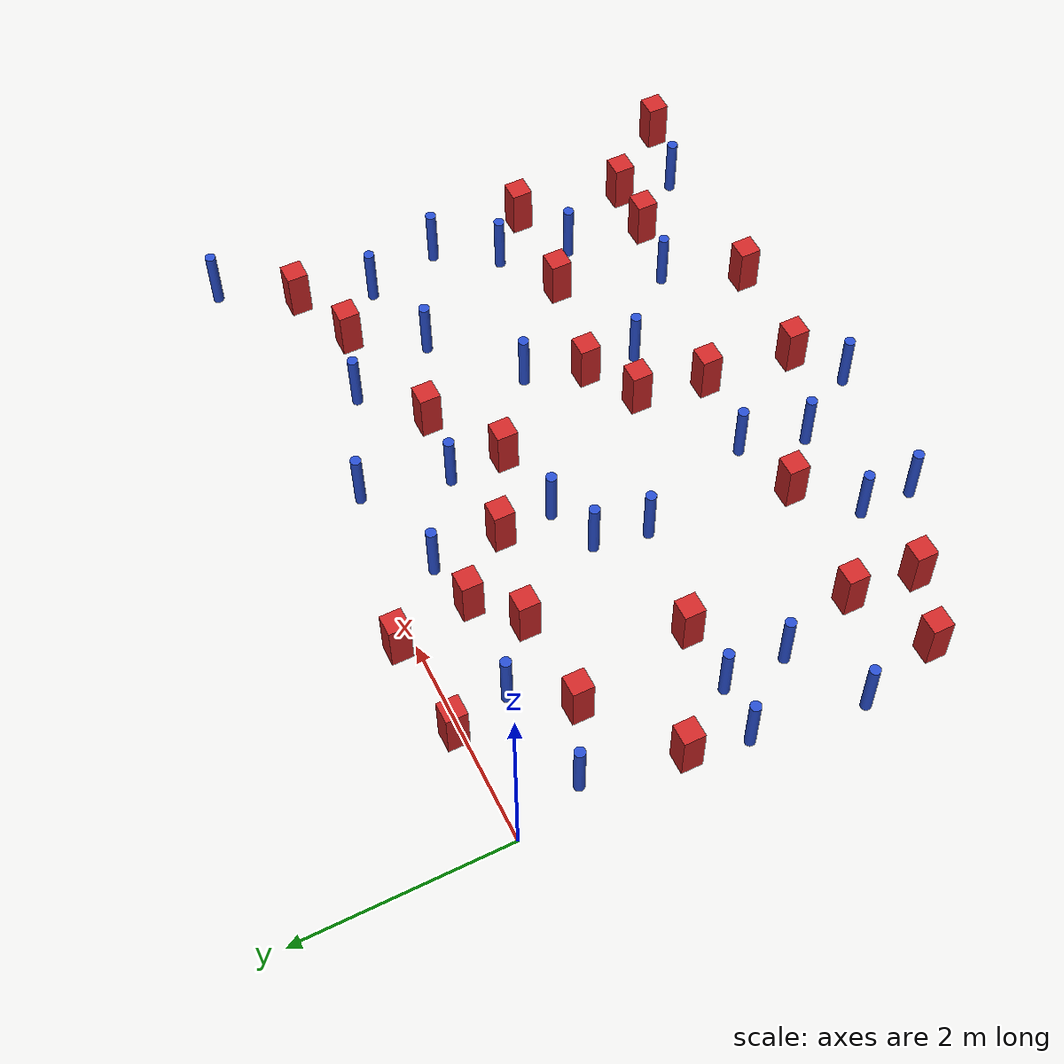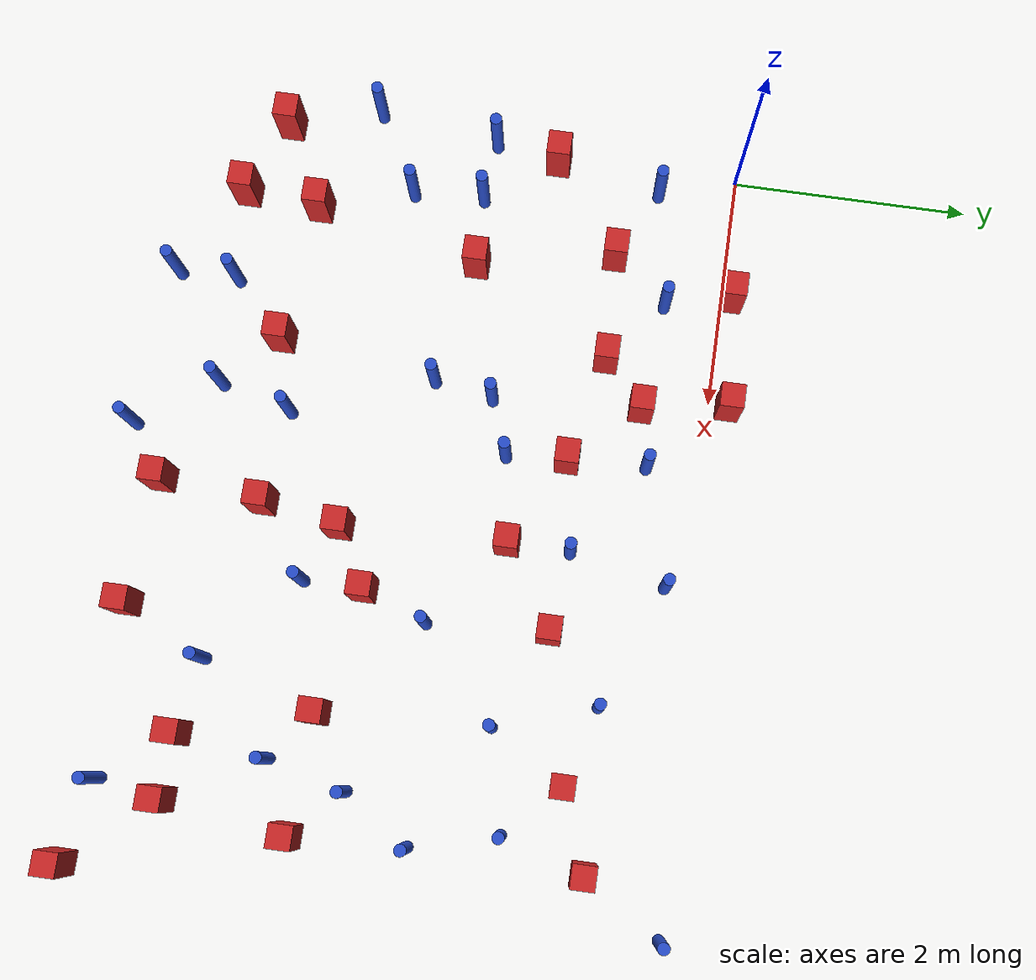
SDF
<sdf version="1.6">
 <model name="dense_96">
  <model name="square_post_obstacle2">
   <static>true</static>
   <pose>0.737378162376 -3.52441754749 -4.36207812815e-07 3.75137919937e-06 9.77721102514e-07 2.47381364184e-05</pose>
   <link name="link">
    <pose>0 0 0.25 0 -0 0</pose>
    <inertial>
     <mass>100</mass>
     <inertia>
      <ixx>0.166667</ixx>
      <ixy>0</ixy>
      <ixz>0</ixz>
      <iyy>0.166667</iyy>
      <iyz>0</iyz>
      <izz>0.166667</izz>
     </inertia>
    </inertial>
    <collision name="collision"><geometry><box><size>.2 .2 .5</size></box></geometry></collision>
    <visual name="visual">
     <geometry><box><size>.2 .2 .5</size></box></geometry>
     <material>
      <script><name>Gazebo/Red</name><uri>file://media/materials/scripts/gazebo.material</uri></script>
     </material>
    </visual>
   </link>
  </model>
  <model name="pole_obstacle13">
   <static>true</static>
   <pose>3.61538598424 -0.178297688606 -3.09024884793e-07 -7.19054271913e-07 -2.11315075118e-07 -1.93935509258e-07</pose>
   <link name="link">
    <pose>0 0 0.3 0 -0 0</pose>
    <inertial>
     <mass>1</mass>
     <inertia><ixx>0.145833</ixx><ixy>0</ixy><ixz>0</ixz><iyy>0.145833</iyy><iyz>0</iyz><izz>0.125</izz></inertia>
    </inertial>
    <collision name="collision">
     <geometry><cylinder><radius>0.05</radius><length>.6</length></cylinder></geometry>
    </collision>
    <visual name="visual">
     <geometry><cylinder><radius>0.05</radius><length>.6</length></cylinder></geometry>
     <material>
      <script><name>Gazebo/Blue</name><uri>file://media/materials/scripts/gazebo.material</uri></script>
     </material>
    </visual>
   </link>
  </model>
  <model name="square_post_obstacle10">
   <static>true</static>
   <pose>6.00634124442 -2.9178933508 -4.36207812815e-07 3.75137919937e-06 9.77721102514e-07 2.47381364184e-05</pose>
   <link name="link">
    <pose>0 0 0.25 0 -0 0</pose>
    <inertial>
     <mass>100</mass>
     <inertia>
      <ixx>0.166667</ixx>
      <ixy>0</ixy>
      <ixz>0</ixz>
      <iyy>0.166667</iyy>
      <iyz>0</iyz>
      <izz>0.166667</izz>
     </inertia>
    </inertial>
    <collision name="collision"><geometry><box><size>.2 .2 .5</size></box></geometry></collision>
    <visual name="visual">
     <geometry><box><size>.2 .2 .5</size></box></geometry>
     <material>
      <script><name>Gazebo/Red</name><uri>file://media/materials/scripts/gazebo.material</uri></script>
     </material>
    </visual>
   </link>
  </model>
  <model name="square_post_obstacle13">
   <static>true</static>
   <pose>4.1084067479 -1.06865431788 -4.36207812815e-07 3.75137919937e-06 9.77721102514e-07 2.47381364184e-05</pose>
   <link name="link">
    <pose>0 0 0.25 0 -0 0</pose>
    <inertial>
     <mass>100</mass>
     <inertia>
      <ixx>0.166667</ixx>
      <ixy>0</ixy>
      <ixz>0</ixz>
      <iyy>0.166667</iyy>
      <iyz>0</iyz>
      <izz>0.166667</izz>
     </inertia>
    </inertial>
    <collision name="collision"><geometry><box><size>.2 .2 .5</size></box></geometry></collision>
    <visual name="visual">
     <geometry><box><size>.2 .2 .5</size></box></geometry>
     <material>
      <script><name>Gazebo/Red</name><uri>file://media/materials/scripts/gazebo.material</uri></script>
     </material>
    </visual>
   </link>
  </model>
  <model name="square_post_obstacle16">
   <static>true</static>
   <pose>5.85840954703 -3.97679554772 -4.36207812815e-07 3.75137919937e-06 9.77721102514e-07 2.47381364184e-05</pose>
   <link name="link">
    <pose>0 0 0.25 0 -0 0</pose>
    <inertial>
     <mass>100</mass>
     <inertia>
      <ixx>0.166667</ixx>
      <ixy>0</ixy>
      <ixz>0</ixz>
      <iyy>0.166667</iyy>
      <iyz>0</iyz>
      <izz>0.166667</izz>
     </inertia>
    </inertial>
    <collision name="collision"><geometry><box><size>.2 .2 .5</size></box></geometry></collision>
    <visual name="visual">
     <geometry><box><size>.2 .2 .5</size></box></geometry>
     <material>
      <script><name>Gazebo/Red</name><uri>file://media/materials/scripts/gazebo.material</uri></script>
     </material>
    </visual>
   </link>
  </model>
  <model name="pole_obstacle21">
   <static>true</static>
   <pose>2.39913195928 -4.09316448349 -3.09024884793e-07 -7.19054271912e-07 -2.11315075134e-07 -1.93935509266e-07</pose>
   <link name="link">
    <pose>0 0 0.3 0 -0 0</pose>
    <inertial>
     <mass>1</mass>
     <inertia><ixx>0.145833</ixx><ixy>0</ixy><ixz>0</ixz><iyy>0.145833</iyy><iyz>0</iyz><izz>0.125</izz></inertia>
    </inertial>
    <collision name="collision">
     <geometry><cylinder><radius>0.05</radius><length>.6</length></cylinder></geometry>
    </collision>
    <visual name="visual">
     <geometry><cylinder><radius>0.05</radius><length>.6</length></cylinder></geometry>
     <material>
      <script><name>Gazebo/Blue</name><uri>file://media/materials/scripts/gazebo.material</uri></script>
     </material>
    </visual>
   </link>
  </model>
  <model name="square_post_obstacle18">
   <static>true</static>
   <pose>3.27307317317 -4.44356269826 -4.36207812815e-07 3.75137919937e-06 9.77721102514e-07 2.47381364184e-05</pose>
   <link name="link">
    <pose>0 0 0.25 0 -0 0</pose>
    <inertial>
     <mass>100</mass>
     <inertia>
      <ixx>0.166667</ixx>
      <ixy>0</ixy>
      <ixz>0</ixz>
      <iyy>0.166667</iyy>
      <iyz>0</iyz>
      <izz>0.166667</izz>
     </inertia>
    </inertial>
    <collision name="collision"><geometry><box><size>.2 .2 .5</size></box></geometry></collision>
    <visual name="visual">
     <geometry><box><size>.2 .2 .5</size></box></geometry>
     <material>
      <script><name>Gazebo/Red</name><uri>file://media/materials/scripts/gazebo.material</uri></script>
     </material>
    </visual>
   </link>
  </model>
  <model name="pole_obstacle25">
   <static>true</static>
   <pose>1.47300155585 -4.11947141754 -3.09024884793e-07 -7.19054271912e-07 -2.11315075134e-07 -1.93935509265e-07</pose>
   <link name="link">
    <pose>0 0 0.3 0 -0 0</pose>
    <inertial>
     <mass>1</mass>
     <inertia><ixx>0.145833</ixx><ixy>0</ixy><ixz>0</ixz><iyy>0.145833</iyy><iyz>0</iyz><izz>0.125</izz></inertia>
    </inertial>
    <collision name="collision">
     <geometry><cylinder><radius>0.05</radius><length>.6</length></cylinder></geometry>
    </collision>
    <visual name="visual">
     <geometry><cylinder><radius>0.05</radius><length>.6</length></cylinder></geometry>
     <material>
      <script><name>Gazebo/Blue</name><uri>file://media/materials/scripts/gazebo.material</uri></script>
     </material>
    </visual>
   </link>
  </model>
  <model name="pole_obstacle38">
   <static>true</static>
   <pose>2.8336300995 -4.75992123661 -3.09024884793e-07 -7.19054271912e-07 -2.11315075134e-07 -1.93935509266e-07</pose>
   <link name="link">
    <pose>0 0 0.3 0 -0 0</pose>
    <inertial>
     <mass>1</mass>
     <inertia><ixx>0.145833</ixx><ixy>0</ixy><ixz>0</ixz><iyy>0.145833</iyy><iyz>0</iyz><izz>0.125</izz></inertia>
    </inertial>
    <collision name="collision">
     <geometry><cylinder><radius>0.05</radius><length>.6</length></cylinder></geometry>
    </collision>
    <visual name="visual">
     <geometry><cylinder><radius>0.05</radius><length>.6</length></cylinder></geometry>
     <material>
      <script><name>Gazebo/Blue</name><uri>file://media/materials/scripts/gazebo.material</uri></script>
     </material>
    </visual>
   </link>
  </model>
  <model name="pole_obstacle40">
   <static>true</static>
   <pose>2.63347133404 -0.456846381421 -3.09024884793e-07 -7.19054271912e-07 -2.11315075129e-07 -1.93935509263e-07</pose>
   <link name="link">
    <pose>0 0 0.3 0 -0 0</pose>
    <inertial>
     <mass>1</mass>
     <inertia><ixx>0.145833</ixx><ixy>0</ixy><ixz>0</ixz><iyy>0.145833</iyy><iyz>0</iyz><izz>0.125</izz></inertia>
    </inertial>
    <collision name="collision">
     <geometry><cylinder><radius>0.05</radius><length>.6</length></cylinder></geometry>
    </collision>
    <visual name="visual">
     <geometry><cylinder><radius>0.05</radius><length>.6</length></cylinder></geometry>
     <material>
      <script><name>Gazebo/Blue</name><uri>file://media/materials/scripts/gazebo.material</uri></script>
     </material>
    </visual>
   </link>
  </model>
  <model name="pole_obstacle44">
   <static>true</static>
   <pose>0.465777182449 -2.14256649682 -3.09024884793e-07 -7.19054271912e-07 -2.11315075129e-07 -1.93935509262e-07</pose>
   <link name="link">
    <pose>0 0 0.3 0 -0 0</pose>
    <inertial>
     <mass>1</mass>
     <inertia><ixx>0.145833</ixx><ixy>0</ixy><ixz>0</ixz><iyy>0.145833</iyy><iyz>0</iyz><izz>0.125</izz></inertia>
    </inertial>
    <collision name="collision">
     <geometry><cylinder><radius>0.05</radius><length>.6</length></cylinder></geometry>
    </collision>
    <visual name="visual">
     <geometry><cylinder><radius>0.05</radius><length>.6</length></cylinder></geometry>
     <material>
      <script><name>Gazebo/Blue</name><uri>file://media/materials/scripts/gazebo.material</uri></script>
     </material>
    </visual>
   </link>
  </model>
  <model name="square_post_obstacle38">
   <static>true</static>
   <pose>3.9673430957 -2.62754604842 -4.36207812815e-07 3.75137919937e-06 9.77721102514e-07 2.47381364184e-05</pose>
   <link name="link">
    <pose>0 0 0.25 0 -0 0</pose>
    <inertial>
     <mass>100</mass>
     <inertia>
      <ixx>0.166667</ixx>
      <ixy>0</ixy>
      <ixz>0</ixz>
      <iyy>0.166667</iyy>
      <iyz>0</iyz>
      <izz>0.166667</izz>
     </inertia>
    </inertial>
    <collision name="collision"><geometry><box><size>.2 .2 .5</size></box></geometry></collision>
    <visual name="visual">
     <geometry><box><size>.2 .2 .5</size></box></geometry>
     <material>
      <script><name>Gazebo/Red</name><uri>file://media/materials/scripts/gazebo.material</uri></script>
     </material>
    </visual>
   </link>
  </model>
  <model name="pole_obstacle50">
   <static>true</static>
   <pose>2.69446637997 -1.63381578746 -3.09024884793e-07 -7.19054271912e-07 -2.11315075122e-07 -1.93935509259e-07</pose>
   <link name="link">
    <pose>0 0 0.3 0 -0 0</pose>
    <inertial>
     <mass>1</mass>
     <inertia><ixx>0.145833</ixx><ixy>0</ixy><ixz>0</ixz><iyy>0.145833</iyy><iyz>0</iyz><izz>0.125</izz></inertia>
    </inertial>
    <collision name="collision">
     <geometry><cylinder><radius>0.05</radius><length>.6</length></cylinder></geometry>
    </collision>
    <visual name="visual">
     <geometry><cylinder><radius>0.05</radius><length>.6</length></cylinder></geometry>
     <material>
      <script><name>Gazebo/Blue</name><uri>file://media/materials/scripts/gazebo.material</uri></script>
     </material>
    </visual>
   </link>
  </model>
  <model name="pole_obstacle56">
   <static>true</static>
   <pose>5.77068111608 -4.50896995325 -3.09024884793e-07 -7.19054271911e-07 -2.1131507516e-07 -1.93935509277e-07</pose>
   <link name="link">
    <pose>0 0 0.3 0 -0 0</pose>
    <inertial>
     <mass>1</mass>
     <inertia><ixx>0.145833</ixx><ixy>0</ixy><ixz>0</ixz><iyy>0.145833</iyy><iyz>0</iyz><izz>0.125</izz></inertia>
    </inertial>
    <collision name="collision">
     <geometry><cylinder><radius>0.05</radius><length>.6</length></cylinder></geometry>
    </collision>
    <visual name="visual">
     <geometry><cylinder><radius>0.05</radius><length>.6</length></cylinder></geometry>
     <material>
      <script><name>Gazebo/Blue</name><uri>file://media/materials/scripts/gazebo.material</uri></script>
     </material>
    </visual>
   </link>
  </model>
  <model name="pole_obstacle57">
   <static>true</static>
   <pose>4.17469020177 -2.08683572138 -3.09024884793e-07 -7.19054271912e-07 -2.11315075144e-07 -1.93935509269e-07</pose>
   <link name="link">
    <pose>0 0 0.3 0 -0 0</pose>
    <inertial>
     <mass>1</mass>
     <inertia><ixx>0.145833</ixx><ixy>0</ixy><ixz>0</ixz><iyy>0.145833</iyy><iyz>0</iyz><izz>0.125</izz></inertia>
    </inertial>
    <collision name="collision">
     <geometry><cylinder><radius>0.05</radius><length>.6</length></cylinder></geometry>
    </collision>
    <visual name="visual">
     <geometry><cylinder><radius>0.05</radius><length>.6</length></cylinder></geometry>
     <material>
      <script><name>Gazebo/Blue</name><uri>file://media/materials/scripts/gazebo.material</uri></script>
     </material>
    </visual>
   </link>
  </model>
  <model name="square_post_obstacle44">
   <static>true</static>
   <pose>5.00976881419 -2.84937262354 -4.36207812815e-07 3.75137919937e-06 9.77721102514e-07 2.47381364184e-05</pose>
   <link name="link">
    <pose>0 0 0.25 0 -0 0</pose>
    <inertial>
     <mass>100</mass>
     <inertia>
      <ixx>0.166667</ixx>
      <ixy>0</ixy>
      <ixz>0</ixz>
      <iyy>0.166667</iyy>
      <iyz>0</iyz>
      <izz>0.166667</izz>
     </inertia>
    </inertial>
    <collision name="collision"><geometry><box><size>.2 .2 .5</size></box></geometry></collision>
    <visual name="visual">
     <geometry><box><size>.2 .2 .5</size></box></geometry>
     <material>
      <script><name>Gazebo/Red</name><uri>file://media/materials/scripts/gazebo.material</uri></script>
     </material>
    </visual>
   </link>
  </model>
  <model name="square_post_obstacle45">
   <static>true</static>
   <pose>5.32962520952 -0.795322266309 -4.36207812815e-07 3.75137919937e-06 9.77721102514e-07 2.47381364184e-05</pose>
   <link name="link">
    <pose>0 0 0.25 0 -0 0</pose>
    <inertial>
     <mass>100</mass>
     <inertia>
      <ixx>0.166667</ixx>
      <ixy>0</ixy>
      <ixz>0</ixz>
      <iyy>0.166667</iyy>
      <iyz>0</iyz>
      <izz>0.166667</izz>
     </inertia>
    </inertial>
    <collision name="collision"><geometry><box><size>.2 .2 .5</size></box></geometry></collision>
    <visual name="visual">
     <geometry><box><size>.2 .2 .5</size></box></geometry>
     <material>
      <script><name>Gazebo/Red</name><uri>file://media/materials/scripts/gazebo.material</uri></script>
     </material>
    </visual>
   </link>
  </model>
  <model name="pole_obstacle63">
   <static>true</static>
   <pose>2.56396072423 -3.48334375443 -3.09024884793e-07 -7.19054271912e-07 -2.11315075144e-07 -1.93935509271e-07</pose>
   <link name="link">
    <pose>0 0 0.3 0 -0 0</pose>
    <inertial>
     <mass>1</mass>
     <inertia><ixx>0.145833</ixx><ixy>0</ixy><ixz>0</ixz><iyy>0.145833</iyy><iyz>0</iyz><izz>0.125</izz></inertia>
    </inertial>
    <collision name="collision">
     <geometry><cylinder><radius>0.05</radius><length>.6</length></cylinder></geometry>
    </collision>
    <visual name="visual">
     <geometry><cylinder><radius>0.05</radius><length>.6</length></cylinder></geometry>
     <material>
      <script><name>Gazebo/Blue</name><uri>file://media/materials/scripts/gazebo.material</uri></script>
     </material>
    </visual>
   </link>
  </model>
  <model name="pole_obstacle66">
   <static>true</static>
   <pose>2.22358269346 -1.81428407818 -3.09024884793e-07 -7.19054271912e-07 -2.11315075122e-07 -1.93935509259e-07</pose>
   <link name="link">
    <pose>0 0 0.3 0 -0 0</pose>
    <inertial>
     <mass>1</mass>
     <inertia><ixx>0.145833</ixx><ixy>0</ixy><ixz>0</ixz><iyy>0.145833</iyy><iyz>0</iyz><izz>0.125</izz></inertia>
    </inertial>
    <collision name="collision">
     <geometry><cylinder><radius>0.05</radius><length>.6</length></cylinder></geometry>
    </collision>
    <visual name="visual">
     <geometry><cylinder><radius>0.05</radius><length>.6</length></cylinder></geometry>
     <material>
      <script><name>Gazebo/Blue</name><uri>file://media/materials/scripts/gazebo.material</uri></script>
     </material>
    </visual>
   </link>
  </model>
  <model name="square_post_obstacle54">
   <static>true</static>
   <pose>3.47399532427 -2.90747570712 -4.36207812815e-07 3.75137919937e-06 9.77721102514e-07 2.47381364184e-05</pose>
   <link name="link">
    <pose>0 0 0.25 0 -0 0</pose>
    <inertial>
     <mass>100</mass>
     <inertia>
      <ixx>0.166667</ixx>
      <ixy>0</ixy>
      <ixz>0</ixz>
      <iyy>0.166667</iyy>
      <iyz>0</iyz>
      <izz>0.166667</izz>
     </inertia>
    </inertial>
    <collision name="collision"><geometry><box><size>.2 .2 .5</size></box></geometry></collision>
    <visual name="visual">
     <geometry><box><size>.2 .2 .5</size></box></geometry>
     <material>
      <script><name>Gazebo/Red</name><uri>file://media/materials/scripts/gazebo.material</uri></script>
     </material>
    </visual>
   </link>
  </model>
  <model name="pole_obstacle74">
   <static>true</static>
   <pose>0.497128094504 -2.74662567701 -3.09024884793e-07 -7.19054271912e-07 -2.11315075129e-07 -1.93935509262e-07</pose>
   <link name="link">
    <pose>0 0 0.3 0 -0 0</pose>
    <inertial>
     <mass>1</mass>
     <inertia><ixx>0.145833</ixx><ixy>0</ixy><ixz>0</ixz><iyy>0.145833</iyy><iyz>0</iyz><izz>0.125</izz></inertia>
    </inertial>
    <collision name="collision">
     <geometry><cylinder><radius>0.05</radius><length>.6</length></cylinder></geometry>
    </collision>
    <visual name="visual">
     <geometry><cylinder><radius>0.05</radius><length>.6</length></cylinder></geometry>
     <material>
      <script><name>Gazebo/Blue</name><uri>file://media/materials/scripts/gazebo.material</uri></script>
     </material>
    </visual>
   </link>
  </model>
  <model name="pole_obstacle77">
   <static>true</static>
   <pose>5.43277344218 -3.18272493803 -3.09024884793e-07 -7.19054271912e-07 -2.11315075144e-07 -1.93935509269e-07</pose>
   <link name="link">
    <pose>0 0 0.3 0 -0 0</pose>
    <inertial>
     <mass>1</mass>
     <inertia><ixx>0.145833</ixx><ixy>0</ixy><ixz>0</ixz><iyy>0.145833</iyy><iyz>0</iyz><izz>0.125</izz></inertia>
    </inertial>
    <collision name="collision">
     <geometry><cylinder><radius>0.05</radius><length>.6</length></cylinder></geometry>
    </collision>
    <visual name="visual">
     <geometry><cylinder><radius>0.05</radius><length>.6</length></cylinder></geometry>
     <material>
      <script><name>Gazebo/Blue</name><uri>file://media/materials/scripts/gazebo.material</uri></script>
     </material>
    </visual>
   </link>
  </model>
  <model name="square_post_obstacle71">
   <static>true</static>
   <pose>3.42283665446 -1.51356876248 -4.36207812815e-07 3.75137919937e-06 9.77721102514e-07 2.47381364184e-05</pose>
   <link name="link">
    <pose>0 0 0.25 0 -0 0</pose>
    <inertial>
     <mass>100</mass>
     <inertia>
      <ixx>0.166667</ixx>
      <ixy>0</ixy>
      <ixz>0</ixz>
      <iyy>0.166667</iyy>
      <iyz>0</iyz>
      <izz>0.166667</izz>
     </inertia>
    </inertial>
    <collision name="collision"><geometry><box><size>.2 .2 .5</size></box></geometry></collision>
    <visual name="visual">
     <geometry><box><size>.2 .2 .5</size></box></geometry>
     <material>
      <script><name>Gazebo/Red</name><uri>file://media/materials/scripts/gazebo.material</uri></script>
     </material>
    </visual>
   </link>
  </model>
  <model name="square_post_obstacle76">
   <static>true</static>
   <pose>1.05893671175 -2.11490466039 -4.36207812815e-07 3.75137919937e-06 9.77721102514e-07 2.47381364184e-05</pose>
   <link name="link">
    <pose>0 0 0.25 0 -0 0</pose>
    <inertial>
     <mass>100</mass>
     <inertia>
      <ixx>0.166667</ixx>
      <ixy>0</ixy>
      <ixz>0</ixz>
      <iyy>0.166667</iyy>
      <iyz>0</iyz>
      <izz>0.166667</izz>
     </inertia>
    </inertial>
    <collision name="collision"><geometry><box><size>.2 .2 .5</size></box></geometry></collision>
    <visual name="visual">
     <geometry><box><size>.2 .2 .5</size></box></geometry>
     <material>
      <script><name>Gazebo/Red</name><uri>file://media/materials/scripts/gazebo.material</uri></script>
     </material>
    </visual>
   </link>
  </model>
  <model name="square_post_obstacle78">
   <static>true</static>
   <pose>0.0395727350987 -1.5456068459 -4.36207812815e-07 3.75137919937e-06 9.77721102514e-07 2.47381364184e-05</pose>
   <link name="link">
    <pose>0 0 0.25 0 -0 0</pose>
    <inertial>
     <mass>100</mass>
     <inertia>
      <ixx>0.166667</ixx>
      <ixy>0</ixy>
      <ixz>0</ixz>
      <iyy>0.166667</iyy>
      <iyz>0</iyz>
      <izz>0.166667</izz>
     </inertia>
    </inertial>
    <collision name="collision"><geometry><box><size>.2 .2 .5</size></box></geometry></collision>
    <visual name="visual">
     <geometry><box><size>.2 .2 .5</size></box></geometry>
     <material>
      <script><name>Gazebo/Red</name><uri>file://media/materials/scripts/gazebo.material</uri></script>
     </material>
    </visual>
   </link>
  </model>
  <model name="pole_obstacle89">
   <static>true</static>
   <pose>3.43356436222 -0.990397719746 -3.09024884793e-07 -7.19054271912e-07 -2.11315075118e-07 -1.93935509258e-07</pose>
   <link name="link">
    <pose>0 0 0.3 0 -0 0</pose>
    <inertial>
     <mass>1</mass>
     <inertia><ixx>0.145833</ixx><ixy>0</ixy><ixz>0</ixz><iyy>0.145833</iyy><iyz>0</iyz><izz>0.125</izz></inertia>
    </inertial>
    <collision name="collision">
     <geometry><cylinder><radius>0.05</radius><length>.6</length></cylinder></geometry>
    </collision>
    <visual name="visual">
     <geometry><cylinder><radius>0.05</radius><length>.6</length></cylinder></geometry>
     <material>
      <script><name>Gazebo/Blue</name><uri>file://media/materials/scripts/gazebo.material</uri></script>
     </material>
    </visual>
   </link>
  </model>
  <model name="square_post_obstacle80">
   <static>true</static>
   <pose>0.0171194814207 -3.89382806712 -4.36207812815e-07 3.75137919937e-06 9.77721102514e-07 2.47381364184e-05</pose>
   <link name="link">
    <pose>0 0 0.25 0 -0 0</pose>
    <inertial>
     <mass>100</mass>
     <inertia>
      <ixx>0.166667</ixx>
      <ixy>0</ixy>
      <ixz>0</ixz>
      <iyy>0.166667</iyy>
      <iyz>0</iyz>
      <izz>0.166667</izz>
     </inertia>
    </inertial>
    <collision name="collision"><geometry><box><size>.2 .2 .5</size></box></geometry></collision>
    <visual name="visual">
     <geometry><box><size>.2 .2 .5</size></box></geometry>
     <material>
      <script><name>Gazebo/Red</name><uri>file://media/materials/scripts/gazebo.material</uri></script>
     </material>
    </visual>
   </link>
  </model>
  <model name="square_post_obstacle100">
   <static>true</static>
   <pose>5.98866814375 -0.543457092269 -4.36207812815e-07 3.75137919937e-06 9.77721102514e-07 2.47381364184e-05</pose>
   <link name="link">
    <pose>0 0 0.25 0 -0 0</pose>
    <inertial>
     <mass>100</mass>
     <inertia>
      <ixx>0.166667</ixx>
      <ixy>0</ixy>
      <ixz>0</ixz>
      <iyy>0.166667</iyy>
      <iyz>0</iyz>
      <izz>0.166667</izz>
     </inertia>
    </inertial>
    <collision name="collision"><geometry><box><size>.2 .2 .5</size></box></geometry></collision>
    <visual name="visual">
     <geometry><box><size>.2 .2 .5</size></box></geometry>
     <material>
      <script><name>Gazebo/Red</name><uri>file://media/materials/scripts/gazebo.material</uri></script>
     </material>
    </visual>
   </link>
  </model>
  <model name="square_post_obstacle101">
   <static>true</static>
   <pose>2.02244625618 0.156946021829 -4.36207812815e-07 3.75137919937e-06 9.77721102514e-07 2.47381364184e-05</pose>
   <link name="link">
    <pose>0 0 0.25 0 -0 0</pose>
    <inertial>
     <mass>100</mass>
     <inertia>
      <ixx>0.166667</ixx>
      <ixy>0</ixy>
      <ixz>0</ixz>
      <iyy>0.166667</iyy>
      <iyz>0</iyz>
      <izz>0.166667</izz>
     </inertia>
    </inertial>
    <collision name="collision"><geometry><box><size>.2 .2 .5</size></box></geometry></collision>
    <visual name="visual">
     <geometry><box><size>.2 .2 .5</size></box></geometry>
     <material>
      <script><name>Gazebo/Red</name><uri>file://media/materials/scripts/gazebo.material</uri></script>
     </material>
    </visual>
   </link>
  </model>
  <model name="pole_obstacle111">
   <static>true</static>
   <pose>-0.193867172093 -3.13026214023 -3.09024884793e-07 -7.19054271912e-07 -2.11315075126e-07 -1.9393550926e-07</pose>
   <link name="link">
    <pose>0 0 0.3 0 -0 0</pose>
    <inertial>
     <mass>1</mass>
     <inertia><ixx>0.145833</ixx><ixy>0</ixy><ixz>0</ixz><iyy>0.145833</iyy><iyz>0</iyz><izz>0.125</izz></inertia>
    </inertial>
    <collision name="collision">
     <geometry><cylinder><radius>0.05</radius><length>.6</length></cylinder></geometry>
    </collision>
    <visual name="visual">
     <geometry><cylinder><radius>0.05</radius><length>.6</length></cylinder></geometry>
     <material>
      <script><name>Gazebo/Blue</name><uri>file://media/materials/scripts/gazebo.material</uri></script>
     </material>
    </visual>
   </link>
  </model>
  <model name="square_post_obstacle108">
   <static>true</static>
   <pose>4.33939572859 -4.5386979894 -4.36207812815e-07 3.75137919937e-06 9.77721102514e-07 2.47381364184e-05</pose>
   <link name="link">
    <pose>0 0 0.25 0 -0 0</pose>
    <inertial>
     <mass>100</mass>
     <inertia>
      <ixx>0.166667</ixx>
      <ixy>0</ixy>
      <ixz>0</ixz>
      <iyy>0.166667</iyy>
      <iyz>0</iyz>
      <izz>0.166667</izz>
     </inertia>
    </inertial>
    <collision name="collision"><geometry><box><size>.2 .2 .5</size></box></geometry></collision>
    <visual name="visual">
     <geometry><box><size>.2 .2 .5</size></box></geometry>
     <material>
      <script><name>Gazebo/Red</name><uri>file://media/materials/scripts/gazebo.material</uri></script>
     </material>
    </visual>
   </link>
  </model>
  <model name="pole_obstacle117">
   <static>true</static>
   <pose>3.96332601038 -3.142268714 -3.09024884793e-07 -7.19054271912e-07 -2.11315075162e-07 -1.93935509281e-07</pose>
   <link name="link">
    <pose>0 0 0.3 0 -0 0</pose>
    <inertial>
     <mass>1</mass>
     <inertia><ixx>0.145833</ixx><ixy>0</ixy><ixz>0</ixz><iyy>0.145833</iyy><iyz>0</iyz><izz>0.125</izz></inertia>
    </inertial>
    <collision name="collision">
     <geometry><cylinder><radius>0.05</radius><length>.6</length></cylinder></geometry>
    </collision>
    <visual name="visual">
     <geometry><cylinder><radius>0.05</radius><length>.6</length></cylinder></geometry>
     <material>
      <script><name>Gazebo/Blue</name><uri>file://media/materials/scripts/gazebo.material</uri></script>
     </material>
    </visual>
   </link>
  </model>
  <model name="square_post_obstacle116">
   <static>true</static>
   <pose>3.35501110407 -3.57183601082 -4.36207812815e-07 3.75137919937e-06 9.77721102514e-07 2.47381364184e-05</pose>
   <link name="link">
    <pose>0 0 0.25 0 -0 0</pose>
    <inertial>
     <mass>100</mass>
     <inertia>
      <ixx>0.166667</ixx>
      <ixy>0</ixy>
      <ixz>0</ixz>
      <iyy>0.166667</iyy>
      <iyz>0</iyz>
      <izz>0.166667</izz>
     </inertia>
    </inertial>
    <collision name="collision"><geometry><box><size>.2 .2 .5</size></box></geometry></collision>
    <visual name="visual">
     <geometry><box><size>.2 .2 .5</size></box></geometry>
     <material>
      <script><name>Gazebo/Red</name><uri>file://media/materials/scripts/gazebo.material</uri></script>
     </material>
    </visual>
   </link>
  </model>
  <model name="pole_obstacle129">
   <static>true</static>
   <pose>-0.0503481458531 -2.09634081897 -3.09024884848e-07 -7.19054271903e-07 -2.11315075205e-07 -1.93935509288e-07</pose>
   <link name="link">
    <pose>0 0 0.3 0 -0 0</pose>
    <inertial>
     <mass>1</mass>
     <inertia><ixx>0.145833</ixx><ixy>0</ixy><ixz>0</ixz><iyy>0.145833</iyy><iyz>0</iyz><izz>0.125</izz></inertia>
    </inertial>
    <collision name="collision">
     <geometry><cylinder><radius>0.05</radius><length>.6</length></cylinder></geometry>
    </collision>
    <visual name="visual">
     <geometry><cylinder><radius>0.05</radius><length>.6</length></cylinder></geometry>
     <material>
      <script><name>Gazebo/Blue</name><uri>file://media/materials/scripts/gazebo.material</uri></script>
     </material>
    </visual>
   </link>
  </model>
  <model name="pole_obstacle133">
   <static>true</static>
   <pose>4.9386062978 -1.431035205 -3.09024884793e-07 -7.19054271912e-07 -2.11315075124e-07 -1.93935509261e-07</pose>
   <link name="link">
    <pose>0 0 0.3 0 -0 0</pose>
    <inertial>
     <mass>1</mass>
     <inertia><ixx>0.145833</ixx><ixy>0</ixy><ixz>0</ixz><iyy>0.145833</iyy><iyz>0</iyz><izz>0.125</izz></inertia>
    </inertial>
    <collision name="collision">
     <geometry><cylinder><radius>0.05</radius><length>.6</length></cylinder></geometry>
    </collision>
    <visual name="visual">
     <geometry><cylinder><radius>0.05</radius><length>.6</length></cylinder></geometry>
     <material>
      <script><name>Gazebo/Blue</name><uri>file://media/materials/scripts/gazebo.material</uri></script>
     </material>
    </visual>
   </link>
  </model>
  <model name="pole_obstacle136">
   <static>true</static>
   <pose>1.21181737743 -0.479956341423 -3.09024884793e-07 -7.19054271912e-07 -2.11315075133e-07 -1.93935509265e-07</pose>
   <link name="link">
    <pose>0 0 0.3 0 -0 0</pose>
    <inertial>
     <mass>1</mass>
     <inertia><ixx>0.145833</ixx><ixy>0</ixy><ixz>0</ixz><iyy>0.145833</iyy><iyz>0</iyz><izz>0.125</izz></inertia>
    </inertial>
    <collision name="collision">
     <geometry><cylinder><radius>0.05</radius><length>.6</length></cylinder></geometry>
    </collision>
    <visual name="visual">
     <geometry><cylinder><radius>0.05</radius><length>.6</length></cylinder></geometry>
     <material>
      <script><name>Gazebo/Blue</name><uri>file://media/materials/scripts/gazebo.material</uri></script>
     </material>
    </visual>
   </link>
  </model>
  <model name="square_post_obstacle136">
   <static>true</static>
   <pose>0.677404059245 -4.16605865278 -4.36207812815e-07 3.75137919937e-06 9.77721102514e-07 2.47381364184e-05</pose>
   <link name="link">
    <pose>0 0 0.25 0 -0 0</pose>
    <inertial>
     <mass>100</mass>
     <inertia>
      <ixx>0.166667</ixx>
      <ixy>0</ixy>
      <ixz>0</ixz>
      <iyy>0.166667</iyy>
      <iyz>0</iyz>
      <izz>0.166667</izz>
     </inertia>
    </inertial>
    <collision name="collision"><geometry><box><size>.2 .2 .5</size></box></geometry></collision>
    <visual name="visual">
     <geometry><box><size>.2 .2 .5</size></box></geometry>
     <material>
      <script><name>Gazebo/Red</name><uri>file://media/materials/scripts/gazebo.material</uri></script>
     </material>
    </visual>
   </link>
  </model>
  <model name="pole_obstacle141">
   <static>true</static>
   <pose>6.41569057333 0.122113144835 -3.09024884793e-07 -7.19054271912e-07 -2.11315075128e-07 -1.93935509262e-07</pose>
   <link name="link">
    <pose>0 0 0.3 0 -0 0</pose>
    <inertial>
     <mass>1</mass>
     <inertia><ixx>0.145833</ixx><ixy>0</ixy><ixz>0</ixz><iyy>0.145833</iyy><iyz>0</iyz><izz>0.125</izz></inertia>
    </inertial>
    <collision name="collision">
     <geometry><cylinder><radius>0.05</radius><length>.6</length></cylinder></geometry>
    </collision>
    <visual name="visual">
     <geometry><cylinder><radius>0.05</radius><length>.6</length></cylinder></geometry>
     <material>
      <script><name>Gazebo/Blue</name><uri>file://media/materials/scripts/gazebo.material</uri></script>
     </material>
    </visual>
   </link>
  </model>
  <model name="square_post_obstacle138">
   <static>true</static>
   <pose>1.06828451728 0.0733264410948 -4.36207812815e-07 3.75137919937e-06 9.77721102514e-07 2.47381364184e-05</pose>
   <link name="link">
    <pose>0 0 0.25 0 -0 0</pose>
    <inertial>
     <mass>100</mass>
     <inertia>
      <ixx>0.166667</ixx>
      <ixy>0</ixy>
      <ixz>0</ixz>
      <iyy>0.166667</iyy>
      <iyz>0</iyz>
      <izz>0.166667</izz>
     </inertia>
    </inertial>
    <collision name="collision"><geometry><box><size>.2 .2 .5</size></box></geometry></collision>
    <visual name="visual">
     <geometry><box><size>.2 .2 .5</size></box></geometry>
     <material>
      <script><name>Gazebo/Red</name><uri>file://media/materials/scripts/gazebo.material</uri></script>
     </material>
    </visual>
   </link>
  </model>
  <model name="pole_obstacle158">
   <static>true</static>
   <pose>0.215773048092 -0.650242306496 -3.09024884793e-07 -7.19054271912e-07 -2.11315075138e-07 -1.93935509266e-07</pose>
   <link name="link">
    <pose>0 0 0.3 0 -0 0</pose>
    <inertial>
     <mass>1</mass>
     <inertia><ixx>0.145833</ixx><ixy>0</ixy><ixz>0</ixz><iyy>0.145833</iyy><iyz>0</iyz><izz>0.125</izz></inertia>
    </inertial>
    <collision name="collision">
     <geometry><cylinder><radius>0.05</radius><length>.6</length></cylinder></geometry>
    </collision>
    <visual name="visual">
     <geometry><cylinder><radius>0.05</radius><length>.6</length></cylinder></geometry>
     <material>
      <script><name>Gazebo/Blue</name><uri>file://media/materials/scripts/gazebo.material</uri></script>
     </material>
    </visual>
   </link>
  </model>
  <model name="square_post_obstacle155">
   <static>true</static>
   <pose>5.32333988051 -3.94661675032 -4.36207812815e-07 3.75137919937e-06 9.77721102514e-07 2.47381364184e-05</pose>
   <link name="link">
    <pose>0 0 0.25 0 -0 0</pose>
    <inertial>
     <mass>100</mass>
     <inertia>
      <ixx>0.166667</ixx>
      <ixy>0</ixy>
      <ixz>0</ixz>
      <iyy>0.166667</iyy>
      <iyz>0</iyz>
      <izz>0.166667</izz>
     </inertia>
    </inertial>
    <collision name="collision"><geometry><box><size>.2 .2 .5</size></box></geometry></collision>
    <visual name="visual">
     <geometry><box><size>.2 .2 .5</size></box></geometry>
     <material>
      <script><name>Gazebo/Red</name><uri>file://media/materials/scripts/gazebo.material</uri></script>
     </material>
    </visual>
   </link>
  </model>
  <model name="pole_obstacle166">
   <static>true</static>
   <pose>1.47141648166 -4.6264317666 -3.09024884793e-07 -7.19054271912e-07 -2.11315075134e-07 -1.93935509265e-07</pose>
   <link name="link">
    <pose>0 0 0.3 0 -0 0</pose>
    <inertial>
     <mass>1</mass>
     <inertia><ixx>0.145833</ixx><ixy>0</ixy><ixz>0</ixz><iyy>0.145833</iyy><iyz>0</iyz><izz>0.125</izz></inertia>
    </inertial>
    <collision name="collision">
     <geometry><cylinder><radius>0.05</radius><length>.6</length></cylinder></geometry>
    </collision>
    <visual name="visual">
     <geometry><cylinder><radius>0.05</radius><length>.6</length></cylinder></geometry>
     <material>
      <script><name>Gazebo/Blue</name><uri>file://media/materials/scripts/gazebo.material</uri></script>
     </material>
    </visual>
   </link>
  </model>
  <model name="pole_obstacle167">
   <static>true</static>
   <pose>4.66063972361 -0.592339562835 -3.09024884793e-07 -7.19054271912e-07 -2.11315075134e-07 -1.93935509265e-07</pose>
   <link name="link">
    <pose>0 0 0.3 0 -0 0</pose>
    <inertial>
     <mass>1</mass>
     <inertia><ixx>0.145833</ixx><ixy>0</ixy><ixz>0</ixz><iyy>0.145833</iyy><iyz>0</iyz><izz>0.125</izz></inertia>
    </inertial>
    <collision name="collision">
     <geometry><cylinder><radius>0.05</radius><length>.6</length></cylinder></geometry>
    </collision>
    <visual name="visual">
     <geometry><cylinder><radius>0.05</radius><length>.6</length></cylinder></geometry>
     <material>
      <script><name>Gazebo/Blue</name><uri>file://media/materials/scripts/gazebo.material</uri></script>
     </material>
    </visual>
   </link>
  </model>
  <model name="square_post_obstacle169">
   <static>true</static>
   <pose>1.93946094099 -3.65450532482 -4.36207812815e-07 3.75137919937e-06 9.77721102514e-07 2.47381364184e-05</pose>
   <link name="link">
    <pose>0 0 0.25 0 -0 0</pose>
    <inertial>
     <mass>100</mass>
     <inertia>
      <ixx>0.166667</ixx>
      <ixy>0</ixy>
      <ixz>0</ixz>
      <iyy>0.166667</iyy>
      <iyz>0</iyz>
      <izz>0.166667</izz>
     </inertia>
    </inertial>
    <collision name="collision"><geometry><box><size>.2 .2 .5</size></box></geometry></collision>
    <visual name="visual">
     <geometry><box><size>.2 .2 .5</size></box></geometry>
     <material>
      <script><name>Gazebo/Red</name><uri>file://media/materials/scripts/gazebo.material</uri></script>
     </material>
    </visual>
   </link>
  </model>
  <model name="pole_obstacle170">
   <static>true</static>
   <pose>5.97226849524 -1.96584426119 -3.09024884793e-07 -7.19054271912e-07 -2.11315075115e-07 -1.93935509255e-07</pose>
   <link name="link">
    <pose>0 0 0.3 0 -0 0</pose>
    <inertial>
     <mass>1</mass>
     <inertia><ixx>0.145833</ixx><ixy>0</ixy><ixz>0</ixz><iyy>0.145833</iyy><iyz>0</iyz><izz>0.125</izz></inertia>
    </inertial>
    <collision name="collision">
     <geometry><cylinder><radius>0.05</radius><length>.6</length></cylinder></geometry>
    </collision>
    <visual name="visual">
     <geometry><cylinder><radius>0.05</radius><length>.6</length></cylinder></geometry>
     <material>
      <script><name>Gazebo/Blue</name><uri>file://media/materials/scripts/gazebo.material</uri></script>
     </material>
    </visual>
   </link>
  </model>
  <model name="pole_obstacle172">
   <static>true</static>
   <pose>5.77800153562 -1.23539605424 -3.09024884793e-07 -7.19054271912e-07 -2.11315075124e-07 -1.93935509261e-07</pose>
   <link name="link">
    <pose>0 0 0.3 0 -0 0</pose>
    <inertial>
     <mass>1</mass>
     <inertia><ixx>0.145833</ixx><ixy>0</ixy><ixz>0</ixz><iyy>0.145833</iyy><iyz>0</iyz><izz>0.125</izz></inertia>
    </inertial>
    <collision name="collision">
     <geometry><cylinder><radius>0.05</radius><length>.6</length></cylinder></geometry>
    </collision>
    <visual name="visual">
     <geometry><cylinder><radius>0.05</radius><length>.6</length></cylinder></geometry>
     <material>
      <script><name>Gazebo/Blue</name><uri>file://media/materials/scripts/gazebo.material</uri></script>
     </material>
    </visual>
   </link>
  </model>
  <model name="square_post_obstacle172">
   <static>true</static>
   <pose>6.45626182357 -4.67738509098 -4.36207812815e-07 3.75137919937e-06 9.77721102514e-07 2.47381364184e-05</pose>
   <link name="link">
    <pose>0 0 0.25 0 -0 0</pose>
    <inertial>
     <mass>100</mass>
     <inertia>
      <ixx>0.166667</ixx>
      <ixy>0</ixy>
      <ixz>0</ixz>
      <iyy>0.166667</iyy>
      <iyz>0</iyz>
      <izz>0.166667</izz>
     </inertia>
    </inertial>
    <collision name="collision"><geometry><box><size>.2 .2 .5</size></box></geometry></collision>
    <visual name="visual">
     <geometry><box><size>.2 .2 .5</size></box></geometry>
     <material>
      <script><name>Gazebo/Red</name><uri>file://media/materials/scripts/gazebo.material</uri></script>
     </material>
    </visual>
   </link>
  </model>
  <model name="square_post_obstacle173">
   <static>true</static>
   <pose>1.74639187703 -0.911371037748 -4.36207812815e-07 3.75137919937e-06 9.77721102514e-07 2.47381364184e-05</pose>
   <link name="link">
    <pose>0 0 0.25 0 -0 0</pose>
    <inertial>
     <mass>100</mass>
     <inertia>
      <ixx>0.166667</ixx>
      <ixy>0</ixy>
      <ixz>0</ixz>
      <iyy>0.166667</iyy>
      <iyz>0</iyz>
      <izz>0.166667</izz>
     </inertia>
    </inertial>
    <collision name="collision"><geometry><box><size>.2 .2 .5</size></box></geometry></collision>
    <visual name="visual">
     <geometry><box><size>.2 .2 .5</size></box></geometry>
     <material>
      <script><name>Gazebo/Red</name><uri>file://media/materials/scripts/gazebo.material</uri></script>
     </material>
    </visual>
   </link>
  </model>
  <model name="pole_obstacle176">
   <static>true</static>
   <pose>4.70481419221 -3.83692386521 -3.09024884793e-07 -7.19054271912e-07 -2.11315075144e-07 -1.93935509269e-07</pose>
   <link name="link">
    <pose>0 0 0.3 0 -0 0</pose>
    <inertial>
     <mass>1</mass>
     <inertia><ixx>0.145833</ixx><ixy>0</ixy><ixz>0</ixz><iyy>0.145833</iyy><iyz>0</iyz><izz>0.125</izz></inertia>
    </inertial>
    <collision name="collision">
     <geometry><cylinder><radius>0.05</radius><length>.6</length></cylinder></geometry>
    </collision>
    <visual name="visual">
     <geometry><cylinder><radius>0.05</radius><length>.6</length></cylinder></geometry>
     <material>
      <script><name>Gazebo/Blue</name><uri>file://media/materials/scripts/gazebo.material</uri></script>
     </material>
    </visual>
   </link>
  </model>
  <model name="square_post_obstacle184">
   <static>true</static>
   <pose>2.13815009265 -0.565888816392 -4.36207812815e-07 3.75137919937e-06 9.77721102514e-07 2.47381364184e-05</pose>
   <link name="link">
    <pose>0 0 0.25 0 -0 0</pose>
    <inertial>
     <mass>100</mass>
     <inertia>
      <ixx>0.166667</ixx>
      <ixy>0</ixy>
      <ixz>0</ixz>
      <iyy>0.166667</iyy>
      <iyz>0</iyz>
      <izz>0.166667</izz>
     </inertia>
    </inertial>
    <collision name="collision"><geometry><box><size>.2 .2 .5</size></box></geometry></collision>
    <visual name="visual">
     <geometry><box><size>.2 .2 .5</size></box></geometry>
     <material>
      <script><name>Gazebo/Red</name><uri>file://media/materials/scripts/gazebo.material</uri></script>
     </material>
    </visual>
   </link>
  </model>
  <model name="pole_obstacle188">
   <static>true</static>
   <pose>2.1319371797 -2.31666791118 -3.09024884793e-07 -7.19054271912e-07 -2.11315075144e-07 -1.93935509271e-07</pose>
   <link name="link">
    <pose>0 0 0.3 0 -0 0</pose>
    <inertial>
     <mass>1</mass>
     <inertia><ixx>0.145833</ixx><ixy>0</ixy><ixz>0</ixz><iyy>0.145833</iyy><iyz>0</iyz><izz>0.125</izz></inertia>
    </inertial>
    <collision name="collision">
     <geometry><cylinder><radius>0.05</radius><length>.6</length></cylinder></geometry>
    </collision>
    <visual name="visual">
     <geometry><cylinder><radius>0.05</radius><length>.6</length></cylinder></geometry>
     <material>
      <script><name>Gazebo/Blue</name><uri>file://media/materials/scripts/gazebo.material</uri></script>
     </material>
    </visual>
   </link>
  </model>
  <model name="square_post_obstacle205">
   <static>true</static>
   <pose>0.831971638418 -0.95155504116 -4.36207812815e-07 3.75137919937e-06 9.77721102514e-07 2.47381364184e-05</pose>
   <link name="link">
    <pose>0 0 0.25 0 -0 0</pose>
    <inertial>
     <mass>100</mass>
     <inertia>
      <ixx>0.166667</ixx>
      <ixy>0</ixy>
      <ixz>0</ixz>
      <iyy>0.166667</iyy>
      <iyz>0</iyz>
      <izz>0.166667</izz>
     </inertia>
    </inertial>
    <collision name="collision"><geometry><box><size>.2 .2 .5</size></box></geometry></collision>
    <visual name="visual">
     <geometry><box><size>.2 .2 .5</size></box></geometry>
     <material>
      <script><name>Gazebo/Red</name><uri>file://media/materials/scripts/gazebo.material</uri></script>
     </material>
    </visual>
   </link>
  </model>
  <model name="pole_obstacle213">
   <static>true</static>
   <pose>5.60473854101 -2.51982475295 -3.09024884793e-07 -7.19054271912e-07 -2.11315075144e-07 -1.93935509269e-07</pose>
   <link name="link">
    <pose>0 0 0.3 0 -0 0</pose>
    <inertial>
     <mass>1</mass>
     <inertia><ixx>0.145833</ixx><ixy>0</ixy><ixz>0</ixz><iyy>0.145833</iyy><iyz>0</iyz><izz>0.125</izz></inertia>
    </inertial>
    <collision name="collision">
     <geometry><cylinder><radius>0.05</radius><length>.6</length></cylinder></geometry>
    </collision>
    <visual name="visual">
     <geometry><cylinder><radius>0.05</radius><length>.6</length></cylinder></geometry>
     <material>
      <script><name>Gazebo/Blue</name><uri>file://media/materials/scripts/gazebo.material</uri></script>
     </material>
    </visual>
   </link>
  </model>
  <model name="square_post_obstacle215">
   <static>true</static>
   <pose>2.6616800552 -1.11960002533 -4.36207812815e-07 3.75137919937e-06 9.77721102514e-07 2.47381364184e-05</pose>
   <link name="link">
    <pose>0 0 0.25 0 -0 0</pose>
    <inertial>
     <mass>100</mass>
     <inertia>
      <ixx>0.166667</ixx>
      <ixy>0</ixy>
      <ixz>0</ixz>
      <iyy>0.166667</iyy>
      <iyz>0</iyz>
      <izz>0.166667</izz>
     </inertia>
    </inertial>
    <collision name="collision"><geometry><box><size>.2 .2 .5</size></box></geometry></collision>
    <visual name="visual">
     <geometry><box><size>.2 .2 .5</size></box></geometry>
     <material>
      <script><name>Gazebo/Red</name><uri>file://media/materials/scripts/gazebo.material</uri></script>
     </material>
    </visual>
   </link>
  </model>
 </model>
</sdf>
